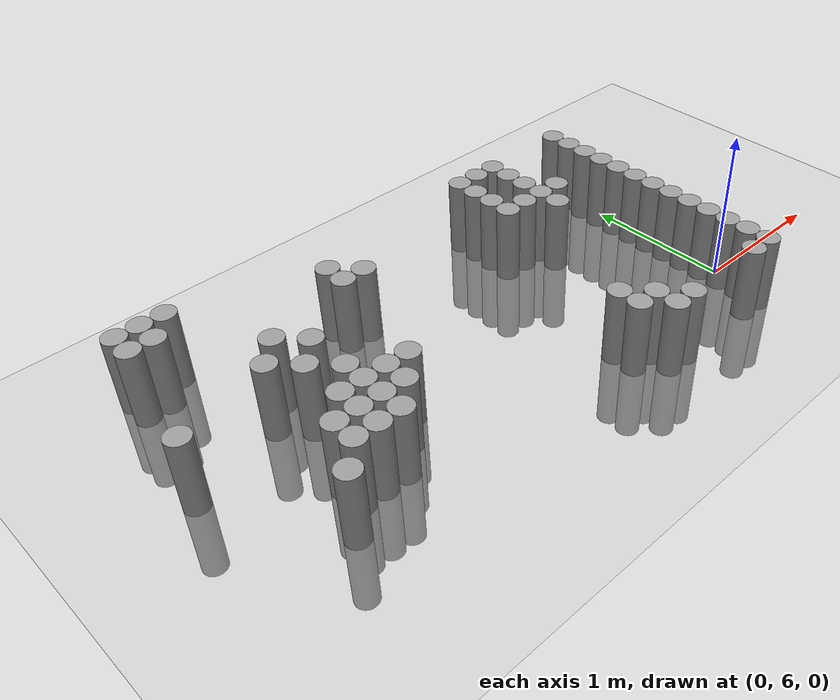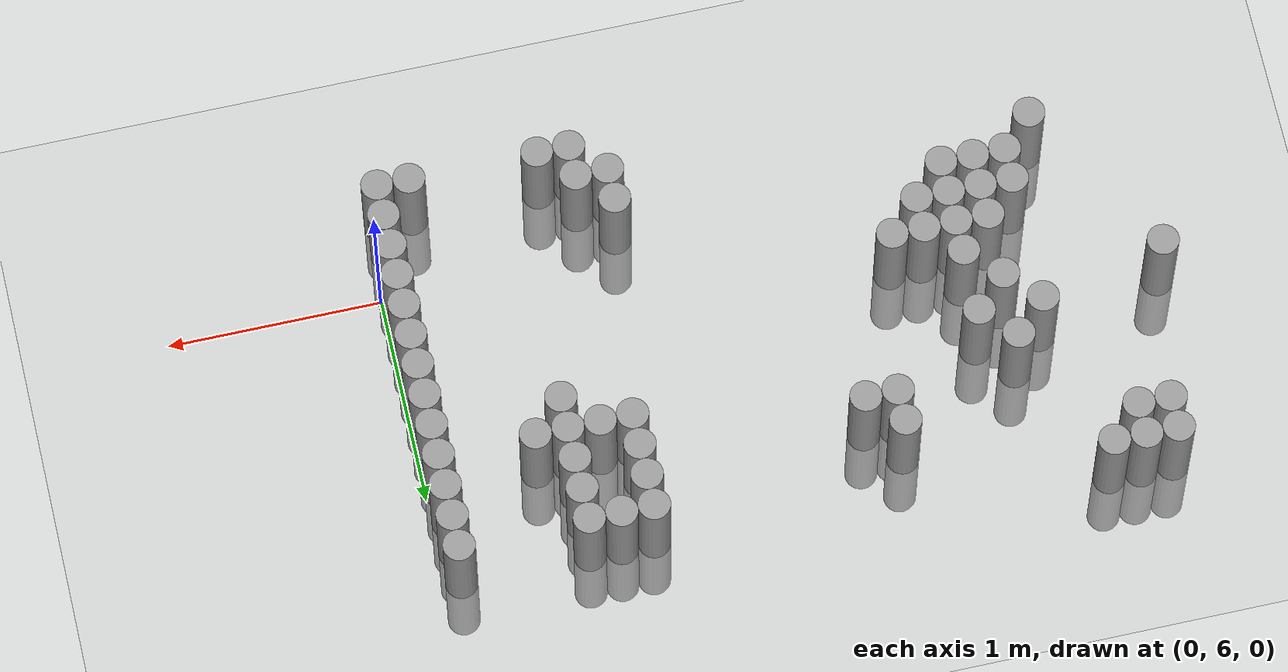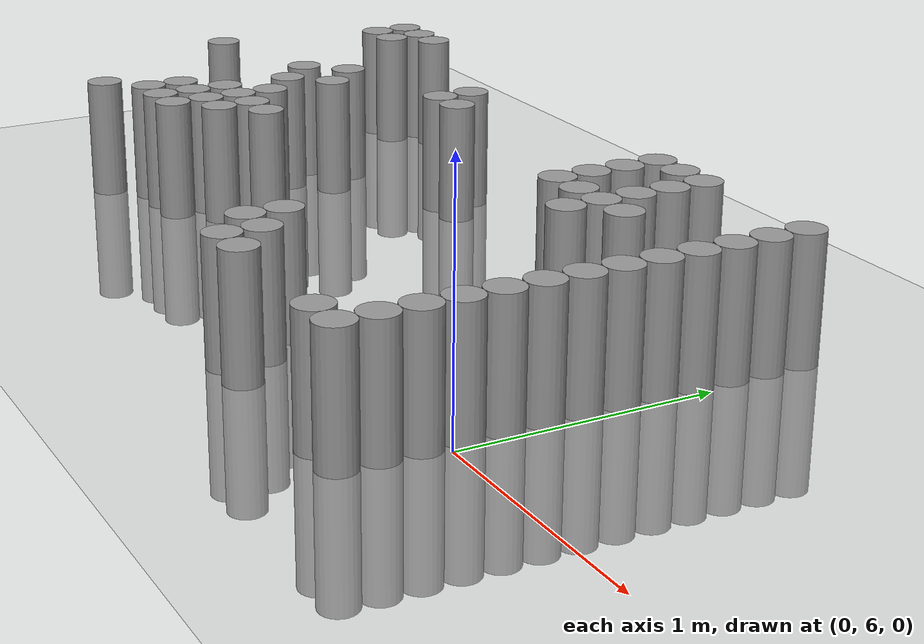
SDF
<sdf version="1.6">
 <world name="default">
  <model name="ground_plane">
   <static>1</static>
   <static>1</static>
   <link name="link">
    <collision name="collision">
     <geometry><plane><normal>0 0 1</normal><size>100 100</size></plane></geometry>
     <surface><friction><ode><mu>100</mu><mu2>50</mu2></ode></friction></surface>
    </collision>
    <visual name="visual">
     <cast_shadows>0</cast_shadows>
     <geometry><plane><normal>0 0 1</normal><size>100 100</size></plane></geometry>
     <material>
      <script><uri>file://media/materials/scripts/gazebo.material</uri><name>Gazebo/Grey</name></script>
     </material>
    </visual>
   </link>
  </model>
  <model name="unit_cylinder_160">
   <static>1</static>
   <pose>-3.525000 6.675000 0.000000 0.000000 0.000000 0.000000</pose>
   <link name="link">
    <inertial>
     <mass>1</mass>
     <inertia><ixx>0.145833</ixx><ixy>0</ixy><ixz>0</ixz><iyy>0.145833</iyy><iyz>0</iyz><izz>0.125</izz></inertia>
    </inertial>
    <collision name="collision">
     <geometry><cylinder><radius>0.075000</radius><length>1</length></cylinder></geometry>
    </collision>
    <visual name="visual">
     <geometry><cylinder><radius>0.075000</radius><length>1</length></cylinder></geometry>
     <material>
      <script><name>Gazebo/Grey</name><uri>file://media/materials/scripts/gazebo.material</uri></script>
     </material>
    </visual>
   </link>
  </model>
  <model name="unit_cylinder_161">
   <static>1</static>
   <pose>-3.375000 7.425000 0.000000 0.000000 0.000000 0.000000</pose>
   <link name="link">
    <inertial>
     <mass>1</mass>
     <inertia><ixx>0.145833</ixx><ixy>0</ixy><ixz>0</ixz><iyy>0.145833</iyy><iyz>0</iyz><izz>0.125</izz></inertia>
    </inertial>
    <collision name="collision">
     <geometry><cylinder><radius>0.075000</radius><length>1</length></cylinder></geometry>
    </collision>
    <visual name="visual">
     <geometry><cylinder><radius>0.075000</radius><length>1</length></cylinder></geometry>
     <material>
      <script><name>Gazebo/Grey</name><uri>file://media/materials/scripts/gazebo.material</uri></script>
     </material>
    </visual>
   </link>
  </model>
  <model name="unit_cylinder_162">
   <static>1</static>
   <pose>-3.375000 7.575000 0.000000 0.000000 0.000000 0.000000</pose>
   <link name="link">
    <inertial>
     <mass>1</mass>
     <inertia><ixx>0.145833</ixx><ixy>0</ixy><ixz>0</ixz><iyy>0.145833</iyy><iyz>0</iyz><izz>0.125</izz></inertia>
    </inertial>
    <collision name="collision">
     <geometry><cylinder><radius>0.075000</radius><length>1</length></cylinder></geometry>
    </collision>
    <visual name="visual">
     <geometry><cylinder><radius>0.075000</radius><length>1</length></cylinder></geometry>
     <material>
      <script><name>Gazebo/Grey</name><uri>file://media/materials/scripts/gazebo.material</uri></script>
     </material>
    </visual>
   </link>
  </model>
  <model name="unit_cylinder_163">
   <static>1</static>
   <pose>-3.225000 7.425000 0.000000 0.000000 0.000000 0.000000</pose>
   <link name="link">
    <inertial>
     <mass>1</mass>
     <inertia><ixx>0.145833</ixx><ixy>0</ixy><ixz>0</ixz><iyy>0.145833</iyy><iyz>0</iyz><izz>0.125</izz></inertia>
    </inertial>
    <collision name="collision">
     <geometry><cylinder><radius>0.075000</radius><length>1</length></cylinder></geometry>
    </collision>
    <visual name="visual">
     <geometry><cylinder><radius>0.075000</radius><length>1</length></cylinder></geometry>
     <material>
      <script><name>Gazebo/Grey</name><uri>file://media/materials/scripts/gazebo.material</uri></script>
     </material>
    </visual>
   </link>
  </model>
  <model name="unit_cylinder_164">
   <static>1</static>
   <pose>-3.225000 7.575000 0.000000 0.000000 0.000000 0.000000</pose>
   <link name="link">
    <inertial>
     <mass>1</mass>
     <inertia><ixx>0.145833</ixx><ixy>0</ixy><ixz>0</ixz><iyy>0.145833</iyy><iyz>0</iyz><izz>0.125</izz></inertia>
    </inertial>
    <collision name="collision">
     <geometry><cylinder><radius>0.075000</radius><length>1</length></cylinder></geometry>
    </collision>
    <visual name="visual">
     <geometry><cylinder><radius>0.075000</radius><length>1</length></cylinder></geometry>
     <material>
      <script><name>Gazebo/Grey</name><uri>file://media/materials/scripts/gazebo.material</uri></script>
     </material>
    </visual>
   </link>
  </model>
  <model name="unit_cylinder_168">
   <static>1</static>
   <pose>-3.075000 5.925000 0.000000 0.000000 0.000000 0.000000</pose>
   <link name="link">
    <inertial>
     <mass>1</mass>
     <inertia><ixx>0.145833</ixx><ixy>0</ixy><ixz>0</ixz><iyy>0.145833</iyy><iyz>0</iyz><izz>0.125</izz></inertia>
    </inertial>
    <collision name="collision">
     <geometry><cylinder><radius>0.075000</radius><length>1</length></cylinder></geometry>
    </collision>
    <visual name="visual">
     <geometry><cylinder><radius>0.075000</radius><length>1</length></cylinder></geometry>
     <material>
      <script><name>Gazebo/Grey</name><uri>file://media/materials/scripts/gazebo.material</uri></script>
     </material>
    </visual>
   </link>
  </model>
  <model name="unit_cylinder_169">
   <static>1</static>
   <pose>-3.075000 7.575000 0.000000 0.000000 0.000000 0.000000</pose>
   <link name="link">
    <inertial>
     <mass>1</mass>
     <inertia><ixx>0.145833</ixx><ixy>0</ixy><ixz>0</ixz><iyy>0.145833</iyy><iyz>0</iyz><izz>0.125</izz></inertia>
    </inertial>
    <collision name="collision">
     <geometry><cylinder><radius>0.075000</radius><length>1</length></cylinder></geometry>
    </collision>
    <visual name="visual">
     <geometry><cylinder><radius>0.075000</radius><length>1</length></cylinder></geometry>
     <material>
      <script><name>Gazebo/Grey</name><uri>file://media/materials/scripts/gazebo.material</uri></script>
     </material>
    </visual>
   </link>
  </model>
  <model name="unit_cylinder_173">
   <static>1</static>
   <pose>-2.925000 6.075000 0.000000 0.000000 0.000000 0.000000</pose>
   <link name="link">
    <inertial>
     <mass>1</mass>
     <inertia><ixx>0.145833</ixx><ixy>0</ixy><ixz>0</ixz><iyy>0.145833</iyy><iyz>0</iyz><izz>0.125</izz></inertia>
    </inertial>
    <collision name="collision">
     <geometry><cylinder><radius>0.075000</radius><length>1</length></cylinder></geometry>
    </collision>
    <visual name="visual">
     <geometry><cylinder><radius>0.075000</radius><length>1</length></cylinder></geometry>
     <material>
      <script><name>Gazebo/Grey</name><uri>file://media/materials/scripts/gazebo.material</uri></script>
     </material>
    </visual>
   </link>
  </model>
  <model name="unit_cylinder_174">
   <static>1</static>
   <pose>-2.925000 6.225000 0.000000 0.000000 0.000000 0.000000</pose>
   <link name="link">
    <inertial>
     <mass>1</mass>
     <inertia><ixx>0.145833</ixx><ixy>0</ixy><ixz>0</ixz><iyy>0.145833</iyy><iyz>0</iyz><izz>0.125</izz></inertia>
    </inertial>
    <collision name="collision">
     <geometry><cylinder><radius>0.075000</radius><length>1</length></cylinder></geometry>
    </collision>
    <visual name="visual">
     <geometry><cylinder><radius>0.075000</radius><length>1</length></cylinder></geometry>
     <material>
      <script><name>Gazebo/Grey</name><uri>file://media/materials/scripts/gazebo.material</uri></script>
     </material>
    </visual>
   </link>
  </model>
  <model name="unit_cylinder_175">
   <static>1</static>
   <pose>-2.925000 6.825000 0.000000 0.000000 0.000000 0.000000</pose>
   <link name="link">
    <inertial>
     <mass>1</mass>
     <inertia><ixx>0.145833</ixx><ixy>0</ixy><ixz>0</ixz><iyy>0.145833</iyy><iyz>0</iyz><izz>0.125</izz></inertia>
    </inertial>
    <collision name="collision">
     <geometry><cylinder><radius>0.075000</radius><length>1</length></cylinder></geometry>
    </collision>
    <visual name="visual">
     <geometry><cylinder><radius>0.075000</radius><length>1</length></cylinder></geometry>
     <material>
      <script><name>Gazebo/Grey</name><uri>file://media/materials/scripts/gazebo.material</uri></script>
     </material>
    </visual>
   </link>
  </model>
  <model name="unit_cylinder_178">
   <static>1</static>
   <pose>-2.775000 6.075000 0.000000 0.000000 0.000000 0.000000</pose>
   <link name="link">
    <inertial>
     <mass>1</mass>
     <inertia><ixx>0.145833</ixx><ixy>0</ixy><ixz>0</ixz><iyy>0.145833</iyy><iyz>0</iyz><izz>0.125</izz></inertia>
    </inertial>
    <collision name="collision">
     <geometry><cylinder><radius>0.075000</radius><length>1</length></cylinder></geometry>
    </collision>
    <visual name="visual">
     <geometry><cylinder><radius>0.075000</radius><length>1</length></cylinder></geometry>
     <material>
      <script><name>Gazebo/Grey</name><uri>file://media/materials/scripts/gazebo.material</uri></script>
     </material>
    </visual>
   </link>
  </model>
  <model name="unit_cylinder_179">
   <static>1</static>
   <pose>-2.775000 6.225000 0.000000 0.000000 0.000000 0.000000</pose>
   <link name="link">
    <inertial>
     <mass>1</mass>
     <inertia><ixx>0.145833</ixx><ixy>0</ixy><ixz>0</ixz><iyy>0.145833</iyy><iyz>0</iyz><izz>0.125</izz></inertia>
    </inertial>
    <collision name="collision">
     <geometry><cylinder><radius>0.075000</radius><length>1</length></cylinder></geometry>
    </collision>
    <visual name="visual">
     <geometry><cylinder><radius>0.075000</radius><length>1</length></cylinder></geometry>
     <material>
      <script><name>Gazebo/Grey</name><uri>file://media/materials/scripts/gazebo.material</uri></script>
     </material>
    </visual>
   </link>
  </model>
  <model name="unit_cylinder_180">
   <static>1</static>
   <pose>-2.775000 6.375000 0.000000 0.000000 0.000000 0.000000</pose>
   <link name="link">
    <inertial>
     <mass>1</mass>
     <inertia><ixx>0.145833</ixx><ixy>0</ixy><ixz>0</ixz><iyy>0.145833</iyy><iyz>0</iyz><izz>0.125</izz></inertia>
    </inertial>
    <collision name="collision">
     <geometry><cylinder><radius>0.075000</radius><length>1</length></cylinder></geometry>
    </collision>
    <visual name="visual">
     <geometry><cylinder><radius>0.075000</radius><length>1</length></cylinder></geometry>
     <material>
      <script><name>Gazebo/Grey</name><uri>file://media/materials/scripts/gazebo.material</uri></script>
     </material>
    </visual>
   </link>
  </model>
  <model name="unit_cylinder_181">
   <static>1</static>
   <pose>-2.775000 6.675000 0.000000 0.000000 0.000000 0.000000</pose>
   <link name="link">
    <inertial>
     <mass>1</mass>
     <inertia><ixx>0.145833</ixx><ixy>0</ixy><ixz>0</ixz><iyy>0.145833</iyy><iyz>0</iyz><izz>0.125</izz></inertia>
    </inertial>
    <collision name="collision">
     <geometry><cylinder><radius>0.075000</radius><length>1</length></cylinder></geometry>
    </collision>
    <visual name="visual">
     <geometry><cylinder><radius>0.075000</radius><length>1</length></cylinder></geometry>
     <material>
      <script><name>Gazebo/Grey</name><uri>file://media/materials/scripts/gazebo.material</uri></script>
     </material>
    </visual>
   </link>
  </model>
  <model name="unit_cylinder_182">
   <static>1</static>
   <pose>-2.775000 6.975000 0.000000 0.000000 0.000000 0.000000</pose>
   <link name="link">
    <inertial>
     <mass>1</mass>
     <inertia><ixx>0.145833</ixx><ixy>0</ixy><ixz>0</ixz><iyy>0.145833</iyy><iyz>0</iyz><izz>0.125</izz></inertia>
    </inertial>
    <collision name="collision">
     <geometry><cylinder><radius>0.075000</radius><length>1</length></cylinder></geometry>
    </collision>
    <visual name="visual">
     <geometry><cylinder><radius>0.075000</radius><length>1</length></cylinder></geometry>
     <material>
      <script><name>Gazebo/Grey</name><uri>file://media/materials/scripts/gazebo.material</uri></script>
     </material>
    </visual>
   </link>
  </model>
  <model name="unit_cylinder_186">
   <static>1</static>
   <pose>-2.625000 6.075000 0.000000 0.000000 0.000000 0.000000</pose>
   <link name="link">
    <inertial>
     <mass>1</mass>
     <inertia><ixx>0.145833</ixx><ixy>0</ixy><ixz>0</ixz><iyy>0.145833</iyy><iyz>0</iyz><izz>0.125</izz></inertia>
    </inertial>
    <collision name="collision">
     <geometry><cylinder><radius>0.075000</radius><length>1</length></cylinder></geometry>
    </collision>
    <visual name="visual">
     <geometry><cylinder><radius>0.075000</radius><length>1</length></cylinder></geometry>
     <material>
      <script><name>Gazebo/Grey</name><uri>file://media/materials/scripts/gazebo.material</uri></script>
     </material>
    </visual>
   </link>
  </model>
  <model name="unit_cylinder_187">
   <static>1</static>
   <pose>-2.625000 6.225000 0.000000 0.000000 0.000000 0.000000</pose>
   <link name="link">
    <inertial>
     <mass>1</mass>
     <inertia><ixx>0.145833</ixx><ixy>0</ixy><ixz>0</ixz><iyy>0.145833</iyy><iyz>0</iyz><izz>0.125</izz></inertia>
    </inertial>
    <collision name="collision">
     <geometry><cylinder><radius>0.075000</radius><length>1</length></cylinder></geometry>
    </collision>
    <visual name="visual">
     <geometry><cylinder><radius>0.075000</radius><length>1</length></cylinder></geometry>
     <material>
      <script><name>Gazebo/Grey</name><uri>file://media/materials/scripts/gazebo.material</uri></script>
     </material>
    </visual>
   </link>
  </model>
  <model name="unit_cylinder_188">
   <static>1</static>
   <pose>-2.625000 6.375000 0.000000 0.000000 0.000000 0.000000</pose>
   <link name="link">
    <inertial>
     <mass>1</mass>
     <inertia><ixx>0.145833</ixx><ixy>0</ixy><ixz>0</ixz><iyy>0.145833</iyy><iyz>0</iyz><izz>0.125</izz></inertia>
    </inertial>
    <collision name="collision">
     <geometry><cylinder><radius>0.075000</radius><length>1</length></cylinder></geometry>
    </collision>
    <visual name="visual">
     <geometry><cylinder><radius>0.075000</radius><length>1</length></cylinder></geometry>
     <material>
      <script><name>Gazebo/Grey</name><uri>file://media/materials/scripts/gazebo.material</uri></script>
     </material>
    </visual>
   </link>
  </model>
  <model name="unit_cylinder_189">
   <static>1</static>
   <pose>-2.625000 6.525000 0.000000 0.000000 0.000000 0.000000</pose>
   <link name="link">
    <inertial>
     <mass>1</mass>
     <inertia><ixx>0.145833</ixx><ixy>0</ixy><ixz>0</ixz><iyy>0.145833</iyy><iyz>0</iyz><izz>0.125</izz></inertia>
    </inertial>
    <collision name="collision">
     <geometry><cylinder><radius>0.075000</radius><length>1</length></cylinder></geometry>
    </collision>
    <visual name="visual">
     <geometry><cylinder><radius>0.075000</radius><length>1</length></cylinder></geometry>
     <material>
      <script><name>Gazebo/Grey</name><uri>file://media/materials/scripts/gazebo.material</uri></script>
     </material>
    </visual>
   </link>
  </model>
  <model name="unit_cylinder_190">
   <static>1</static>
   <pose>-2.625000 6.825000 0.000000 0.000000 0.000000 0.000000</pose>
   <link name="link">
    <inertial>
     <mass>1</mass>
     <inertia><ixx>0.145833</ixx><ixy>0</ixy><ixz>0</ixz><iyy>0.145833</iyy><iyz>0</iyz><izz>0.125</izz></inertia>
    </inertial>
    <collision name="collision">
     <geometry><cylinder><radius>0.075000</radius><length>1</length></cylinder></geometry>
    </collision>
    <visual name="visual">
     <geometry><cylinder><radius>0.075000</radius><length>1</length></cylinder></geometry>
     <material>
      <script><name>Gazebo/Grey</name><uri>file://media/materials/scripts/gazebo.material</uri></script>
     </material>
    </visual>
   </link>
  </model>
  <model name="unit_cylinder_194">
   <static>1</static>
   <pose>-2.475000 6.225000 0.000000 0.000000 0.000000 0.000000</pose>
   <link name="link">
    <inertial>
     <mass>1</mass>
     <inertia><ixx>0.145833</ixx><ixy>0</ixy><ixz>0</ixz><iyy>0.145833</iyy><iyz>0</iyz><izz>0.125</izz></inertia>
    </inertial>
    <collision name="collision">
     <geometry><cylinder><radius>0.075000</radius><length>1</length></cylinder></geometry>
    </collision>
    <visual name="visual">
     <geometry><cylinder><radius>0.075000</radius><length>1</length></cylinder></geometry>
     <material>
      <script><name>Gazebo/Grey</name><uri>file://media/materials/scripts/gazebo.material</uri></script>
     </material>
    </visual>
   </link>
  </model>
  <model name="unit_cylinder_195">
   <static>1</static>
   <pose>-2.475000 6.375000 0.000000 0.000000 0.000000 0.000000</pose>
   <link name="link">
    <inertial>
     <mass>1</mass>
     <inertia><ixx>0.145833</ixx><ixy>0</ixy><ixz>0</ixz><iyy>0.145833</iyy><iyz>0</iyz><izz>0.125</izz></inertia>
    </inertial>
    <collision name="collision">
     <geometry><cylinder><radius>0.075000</radius><length>1</length></cylinder></geometry>
    </collision>
    <visual name="visual">
     <geometry><cylinder><radius>0.075000</radius><length>1</length></cylinder></geometry>
     <material>
      <script><name>Gazebo/Grey</name><uri>file://media/materials/scripts/gazebo.material</uri></script>
     </material>
    </visual>
   </link>
  </model>
  <model name="unit_cylinder_196">
   <static>1</static>
   <pose>-2.325000 6.375000 0.000000 0.000000 0.000000 0.000000</pose>
   <link name="link">
    <inertial>
     <mass>1</mass>
     <inertia><ixx>0.145833</ixx><ixy>0</ixy><ixz>0</ixz><iyy>0.145833</iyy><iyz>0</iyz><izz>0.125</izz></inertia>
    </inertial>
    <collision name="collision">
     <geometry><cylinder><radius>0.075000</radius><length>1</length></cylinder></geometry>
    </collision>
    <visual name="visual">
     <geometry><cylinder><radius>0.075000</radius><length>1</length></cylinder></geometry>
     <material>
      <script><name>Gazebo/Grey</name><uri>file://media/materials/scripts/gazebo.material</uri></script>
     </material>
    </visual>
   </link>
  </model>
  <model name="unit_cylinder_198">
   <static>1</static>
   <pose>-2.175000 7.125000 0.000000 0.000000 0.000000 0.000000</pose>
   <link name="link">
    <inertial>
     <mass>1</mass>
     <inertia><ixx>0.145833</ixx><ixy>0</ixy><ixz>0</ixz><iyy>0.145833</iyy><iyz>0</iyz><izz>0.125</izz></inertia>
    </inertial>
    <collision name="collision">
     <geometry><cylinder><radius>0.075000</radius><length>1</length></cylinder></geometry>
    </collision>
    <visual name="visual">
     <geometry><cylinder><radius>0.075000</radius><length>1</length></cylinder></geometry>
     <material>
      <script><name>Gazebo/Grey</name><uri>file://media/materials/scripts/gazebo.material</uri></script>
     </material>
    </visual>
   </link>
  </model>
  <model name="unit_cylinder_199">
   <static>1</static>
   <pose>-2.175000 7.275000 0.000000 0.000000 0.000000 0.000000</pose>
   <link name="link">
    <inertial>
     <mass>1</mass>
     <inertia><ixx>0.145833</ixx><ixy>0</ixy><ixz>0</ixz><iyy>0.145833</iyy><iyz>0</iyz><izz>0.125</izz></inertia>
    </inertial>
    <collision name="collision">
     <geometry><cylinder><radius>0.075000</radius><length>1</length></cylinder></geometry>
    </collision>
    <visual name="visual">
     <geometry><cylinder><radius>0.075000</radius><length>1</length></cylinder></geometry>
     <material>
      <script><name>Gazebo/Grey</name><uri>file://media/materials/scripts/gazebo.material</uri></script>
     </material>
    </visual>
   </link>
  </model>
  <model name="unit_cylinder_204">
   <static>1</static>
   <pose>-2.025000 7.125000 0.000000 0.000000 0.000000 0.000000</pose>
   <link name="link">
    <inertial>
     <mass>1</mass>
     <inertia><ixx>0.145833</ixx><ixy>0</ixy><ixz>0</ixz><iyy>0.145833</iyy><iyz>0</iyz><izz>0.125</izz></inertia>
    </inertial>
    <collision name="collision">
     <geometry><cylinder><radius>0.075000</radius><length>1</length></cylinder></geometry>
    </collision>
    <visual name="visual">
     <geometry><cylinder><radius>0.075000</radius><length>1</length></cylinder></geometry>
     <material>
      <script><name>Gazebo/Grey</name><uri>file://media/materials/scripts/gazebo.material</uri></script>
     </material>
    </visual>
   </link>
  </model>
  <model name="unit_cylinder_214">
   <static>1</static>
   <pose>-1.125000 5.775000 0.000000 0.000000 0.000000 0.000000</pose>
   <link name="link">
    <inertial>
     <mass>1</mass>
     <inertia><ixx>0.145833</ixx><ixy>0</ixy><ixz>0</ixz><iyy>0.145833</iyy><iyz>0</iyz><izz>0.125</izz></inertia>
    </inertial>
    <collision name="collision">
     <geometry><cylinder><radius>0.075000</radius><length>1</length></cylinder></geometry>
    </collision>
    <visual name="visual">
     <geometry><cylinder><radius>0.075000</radius><length>1</length></cylinder></geometry>
     <material>
      <script><name>Gazebo/Grey</name><uri>file://media/materials/scripts/gazebo.material</uri></script>
     </material>
    </visual>
   </link>
  </model>
  <model name="unit_cylinder_215">
   <static>1</static>
   <pose>-1.125000 5.925000 0.000000 0.000000 0.000000 0.000000</pose>
   <link name="link">
    <inertial>
     <mass>1</mass>
     <inertia><ixx>0.145833</ixx><ixy>0</ixy><ixz>0</ixz><iyy>0.145833</iyy><iyz>0</iyz><izz>0.125</izz></inertia>
    </inertial>
    <collision name="collision">
     <geometry><cylinder><radius>0.075000</radius><length>1</length></cylinder></geometry>
    </collision>
    <visual name="visual">
     <geometry><cylinder><radius>0.075000</radius><length>1</length></cylinder></geometry>
     <material>
      <script><name>Gazebo/Grey</name><uri>file://media/materials/scripts/gazebo.material</uri></script>
     </material>
    </visual>
   </link>
  </model>
  <model name="unit_cylinder_217">
   <static>1</static>
   <pose>-0.975000 5.625000 0.000000 0.000000 0.000000 0.000000</pose>
   <link name="link">
    <inertial>
     <mass>1</mass>
     <inertia><ixx>0.145833</ixx><ixy>0</ixy><ixz>0</ixz><iyy>0.145833</iyy><iyz>0</iyz><izz>0.125</izz></inertia>
    </inertial>
    <collision name="collision">
     <geometry><cylinder><radius>0.075000</radius><length>1</length></cylinder></geometry>
    </collision>
    <visual name="visual">
     <geometry><cylinder><radius>0.075000</radius><length>1</length></cylinder></geometry>
     <material>
      <script><name>Gazebo/Grey</name><uri>file://media/materials/scripts/gazebo.material</uri></script>
     </material>
    </visual>
   </link>
  </model>
  <model name="unit_cylinder_218">
   <static>1</static>
   <pose>-0.975000 5.775000 0.000000 0.000000 0.000000 0.000000</pose>
   <link name="link">
    <inertial>
     <mass>1</mass>
     <inertia><ixx>0.145833</ixx><ixy>0</ixy><ixz>0</ixz><iyy>0.145833</iyy><iyz>0</iyz><izz>0.125</izz></inertia>
    </inertial>
    <collision name="collision">
     <geometry><cylinder><radius>0.075000</radius><length>1</length></cylinder></geometry>
    </collision>
    <visual name="visual">
     <geometry><cylinder><radius>0.075000</radius><length>1</length></cylinder></geometry>
     <material>
      <script><name>Gazebo/Grey</name><uri>file://media/materials/scripts/gazebo.material</uri></script>
     </material>
    </visual>
   </link>
  </model>
  <model name="unit_cylinder_219">
   <static>1</static>
   <pose>-0.975000 6.975000 0.000000 0.000000 0.000000 0.000000</pose>
   <link name="link">
    <inertial>
     <mass>1</mass>
     <inertia><ixx>0.145833</ixx><ixy>0</ixy><ixz>0</ixz><iyy>0.145833</iyy><iyz>0</iyz><izz>0.125</izz></inertia>
    </inertial>
    <collision name="collision">
     <geometry><cylinder><radius>0.075000</radius><length>1</length></cylinder></geometry>
    </collision>
    <visual name="visual">
     <geometry><cylinder><radius>0.075000</radius><length>1</length></cylinder></geometry>
     <material>
      <script><name>Gazebo/Grey</name><uri>file://media/materials/scripts/gazebo.material</uri></script>
     </material>
    </visual>
   </link>
  </model>
  <model name="unit_cylinder_220">
   <static>1</static>
   <pose>-0.975000 7.125000 0.000000 0.000000 0.000000 0.000000</pose>
   <link name="link">
    <inertial>
     <mass>1</mass>
     <inertia><ixx>0.145833</ixx><ixy>0</ixy><ixz>0</ixz><iyy>0.145833</iyy><iyz>0</iyz><izz>0.125</izz></inertia>
    </inertial>
    <collision name="collision">
     <geometry><cylinder><radius>0.075000</radius><length>1</length></cylinder></geometry>
    </collision>
    <visual name="visual">
     <geometry><cylinder><radius>0.075000</radius><length>1</length></cylinder></geometry>
     <material>
      <script><name>Gazebo/Grey</name><uri>file://media/materials/scripts/gazebo.material</uri></script>
     </material>
    </visual>
   </link>
  </model>
  <model name="unit_cylinder_221">
   <static>1</static>
   <pose>-0.975000 7.275000 0.000000 0.000000 0.000000 0.000000</pose>
   <link name="link">
    <inertial>
     <mass>1</mass>
     <inertia><ixx>0.145833</ixx><ixy>0</ixy><ixz>0</ixz><iyy>0.145833</iyy><iyz>0</iyz><izz>0.125</izz></inertia>
    </inertial>
    <collision name="collision">
     <geometry><cylinder><radius>0.075000</radius><length>1</length></cylinder></geometry>
    </collision>
    <visual name="visual">
     <geometry><cylinder><radius>0.075000</radius><length>1</length></cylinder></geometry>
     <material>
      <script><name>Gazebo/Grey</name><uri>file://media/materials/scripts/gazebo.material</uri></script>
     </material>
    </visual>
   </link>
  </model>
  <model name="unit_cylinder_222">
   <static>1</static>
   <pose>-0.975000 7.425000 0.000000 0.000000 0.000000 0.000000</pose>
   <link name="link">
    <inertial>
     <mass>1</mass>
     <inertia><ixx>0.145833</ixx><ixy>0</ixy><ixz>0</ixz><iyy>0.145833</iyy><iyz>0</iyz><izz>0.125</izz></inertia>
    </inertial>
    <collision name="collision">
     <geometry><cylinder><radius>0.075000</radius><length>1</length></cylinder></geometry>
    </collision>
    <visual name="visual">
     <geometry><cylinder><radius>0.075000</radius><length>1</length></cylinder></geometry>
     <material>
      <script><name>Gazebo/Grey</name><uri>file://media/materials/scripts/gazebo.material</uri></script>
     </material>
    </visual>
   </link>
  </model>
  <model name="unit_cylinder_225">
   <static>1</static>
   <pose>-0.825000 5.625000 0.000000 0.000000 0.000000 0.000000</pose>
   <link name="link">
    <inertial>
     <mass>1</mass>
     <inertia><ixx>0.145833</ixx><ixy>0</ixy><ixz>0</ixz><iyy>0.145833</iyy><iyz>0</iyz><izz>0.125</izz></inertia>
    </inertial>
    <collision name="collision">
     <geometry><cylinder><radius>0.075000</radius><length>1</length></cylinder></geometry>
    </collision>
    <visual name="visual">
     <geometry><cylinder><radius>0.075000</radius><length>1</length></cylinder></geometry>
     <material>
      <script><name>Gazebo/Grey</name><uri>file://media/materials/scripts/gazebo.material</uri></script>
     </material>
    </visual>
   </link>
  </model>
  <model name="unit_cylinder_226">
   <static>1</static>
   <pose>-0.825000 6.975000 0.000000 0.000000 0.000000 0.000000</pose>
   <link name="link">
    <inertial>
     <mass>1</mass>
     <inertia><ixx>0.145833</ixx><ixy>0</ixy><ixz>0</ixz><iyy>0.145833</iyy><iyz>0</iyz><izz>0.125</izz></inertia>
    </inertial>
    <collision name="collision">
     <geometry><cylinder><radius>0.075000</radius><length>1</length></cylinder></geometry>
    </collision>
    <visual name="visual">
     <geometry><cylinder><radius>0.075000</radius><length>1</length></cylinder></geometry>
     <material>
      <script><name>Gazebo/Grey</name><uri>file://media/materials/scripts/gazebo.material</uri></script>
     </material>
    </visual>
   </link>
  </model>
  <model name="unit_cylinder_227">
   <static>1</static>
   <pose>-0.825000 7.425000 0.000000 0.000000 0.000000 0.000000</pose>
   <link name="link">
    <inertial>
     <mass>1</mass>
     <inertia><ixx>0.145833</ixx><ixy>0</ixy><ixz>0</ixz><iyy>0.145833</iyy><iyz>0</iyz><izz>0.125</izz></inertia>
    </inertial>
    <collision name="collision">
     <geometry><cylinder><radius>0.075000</radius><length>1</length></cylinder></geometry>
    </collision>
    <visual name="visual">
     <geometry><cylinder><radius>0.075000</radius><length>1</length></cylinder></geometry>
     <material>
      <script><name>Gazebo/Grey</name><uri>file://media/materials/scripts/gazebo.material</uri></script>
     </material>
    </visual>
   </link>
  </model>
  <model name="unit_cylinder_233">
   <static>1</static>
   <pose>-0.675000 6.825000 0.000000 0.000000 0.000000 0.000000</pose>
   <link name="link">
    <inertial>
     <mass>1</mass>
     <inertia><ixx>0.145833</ixx><ixy>0</ixy><ixz>0</ixz><iyy>0.145833</iyy><iyz>0</iyz><izz>0.125</izz></inertia>
    </inertial>
    <collision name="collision">
     <geometry><cylinder><radius>0.075000</radius><length>1</length></cylinder></geometry>
    </collision>
    <visual name="visual">
     <geometry><cylinder><radius>0.075000</radius><length>1</length></cylinder></geometry>
     <material>
      <script><name>Gazebo/Grey</name><uri>file://media/materials/scripts/gazebo.material</uri></script>
     </material>
    </visual>
   </link>
  </model>
  <model name="unit_cylinder_234">
   <static>1</static>
   <pose>-0.675000 6.975000 0.000000 0.000000 0.000000 0.000000</pose>
   <link name="link">
    <inertial>
     <mass>1</mass>
     <inertia><ixx>0.145833</ixx><ixy>0</ixy><ixz>0</ixz><iyy>0.145833</iyy><iyz>0</iyz><izz>0.125</izz></inertia>
    </inertial>
    <collision name="collision">
     <geometry><cylinder><radius>0.075000</radius><length>1</length></cylinder></geometry>
    </collision>
    <visual name="visual">
     <geometry><cylinder><radius>0.075000</radius><length>1</length></cylinder></geometry>
     <material>
      <script><name>Gazebo/Grey</name><uri>file://media/materials/scripts/gazebo.material</uri></script>
     </material>
    </visual>
   </link>
  </model>
  <model name="unit_cylinder_235">
   <static>1</static>
   <pose>-0.675000 7.125000 0.000000 0.000000 0.000000 0.000000</pose>
   <link name="link">
    <inertial>
     <mass>1</mass>
     <inertia><ixx>0.145833</ixx><ixy>0</ixy><ixz>0</ixz><iyy>0.145833</iyy><iyz>0</iyz><izz>0.125</izz></inertia>
    </inertial>
    <collision name="collision">
     <geometry><cylinder><radius>0.075000</radius><length>1</length></cylinder></geometry>
    </collision>
    <visual name="visual">
     <geometry><cylinder><radius>0.075000</radius><length>1</length></cylinder></geometry>
     <material>
      <script><name>Gazebo/Grey</name><uri>file://media/materials/scripts/gazebo.material</uri></script>
     </material>
    </visual>
   </link>
  </model>
  <model name="unit_cylinder_236">
   <static>1</static>
   <pose>-0.675000 7.275000 0.000000 0.000000 0.000000 0.000000</pose>
   <link name="link">
    <inertial>
     <mass>1</mass>
     <inertia><ixx>0.145833</ixx><ixy>0</ixy><ixz>0</ixz><iyy>0.145833</iyy><iyz>0</iyz><izz>0.125</izz></inertia>
    </inertial>
    <collision name="collision">
     <geometry><cylinder><radius>0.075000</radius><length>1</length></cylinder></geometry>
    </collision>
    <visual name="visual">
     <geometry><cylinder><radius>0.075000</radius><length>1</length></cylinder></geometry>
     <material>
      <script><name>Gazebo/Grey</name><uri>file://media/materials/scripts/gazebo.material</uri></script>
     </material>
    </visual>
   </link>
  </model>
  <model name="unit_cylinder_237">
   <static>1</static>
   <pose>-0.675000 7.425000 0.000000 0.000000 0.000000 0.000000</pose>
   <link name="link">
    <inertial>
     <mass>1</mass>
     <inertia><ixx>0.145833</ixx><ixy>0</ixy><ixz>0</ixz><iyy>0.145833</iyy><iyz>0</iyz><izz>0.125</izz></inertia>
    </inertial>
    <collision name="collision">
     <geometry><cylinder><radius>0.075000</radius><length>1</length></cylinder></geometry>
    </collision>
    <visual name="visual">
     <geometry><cylinder><radius>0.075000</radius><length>1</length></cylinder></geometry>
     <material>
      <script><name>Gazebo/Grey</name><uri>file://media/materials/scripts/gazebo.material</uri></script>
     </material>
    </visual>
   </link>
  </model>
  <model name="unit_cylinder_240">
   <static>1</static>
   <pose>-0.525000 6.975000 0.000000 0.000000 0.000000 0.000000</pose>
   <link name="link">
    <inertial>
     <mass>1</mass>
     <inertia><ixx>0.145833</ixx><ixy>0</ixy><ixz>0</ixz><iyy>0.145833</iyy><iyz>0</iyz><izz>0.125</izz></inertia>
    </inertial>
    <collision name="collision">
     <geometry><cylinder><radius>0.075000</radius><length>1</length></cylinder></geometry>
    </collision>
    <visual name="visual">
     <geometry><cylinder><radius>0.075000</radius><length>1</length></cylinder></geometry>
     <material>
      <script><name>Gazebo/Grey</name><uri>file://media/materials/scripts/gazebo.material</uri></script>
     </material>
    </visual>
   </link>
  </model>
  <model name="unit_cylinder_250">
   <static>1</static>
   <pose>-0.225000 5.625000 0.000000 0.000000 0.000000 0.000000</pose>
   <link name="link">
    <inertial>
     <mass>1</mass>
     <inertia><ixx>0.145833</ixx><ixy>0</ixy><ixz>0</ixz><iyy>0.145833</iyy><iyz>0</iyz><izz>0.125</izz></inertia>
    </inertial>
    <collision name="collision">
     <geometry><cylinder><radius>0.075000</radius><length>1</length></cylinder></geometry>
    </collision>
    <visual name="visual">
     <geometry><cylinder><radius>0.075000</radius><length>1</length></cylinder></geometry>
     <material>
      <script><name>Gazebo/Grey</name><uri>file://media/materials/scripts/gazebo.material</uri></script>
     </material>
    </visual>
   </link>
  </model>
  <model name="unit_cylinder_258">
   <static>1</static>
   <pose>-0.075000 5.625000 0.000000 0.000000 0.000000 0.000000</pose>
   <link name="link">
    <inertial>
     <mass>1</mass>
     <inertia><ixx>0.145833</ixx><ixy>0</ixy><ixz>0</ixz><iyy>0.145833</iyy><iyz>0</iyz><izz>0.125</izz></inertia>
    </inertial>
    <collision name="collision">
     <geometry><cylinder><radius>0.075000</radius><length>1</length></cylinder></geometry>
    </collision>
    <visual name="visual">
     <geometry><cylinder><radius>0.075000</radius><length>1</length></cylinder></geometry>
     <material>
      <script><name>Gazebo/Grey</name><uri>file://media/materials/scripts/gazebo.material</uri></script>
     </material>
    </visual>
   </link>
  </model>
  <model name="unit_cylinder_259">
   <static>1</static>
   <pose>-0.075000 5.775000 0.000000 0.000000 0.000000 0.000000</pose>
   <link name="link">
    <inertial>
     <mass>1</mass>
     <inertia><ixx>0.145833</ixx><ixy>0</ixy><ixz>0</ixz><iyy>0.145833</iyy><iyz>0</iyz><izz>0.125</izz></inertia>
    </inertial>
    <collision name="collision">
     <geometry><cylinder><radius>0.075000</radius><length>1</length></cylinder></geometry>
    </collision>
    <visual name="visual">
     <geometry><cylinder><radius>0.075000</radius><length>1</length></cylinder></geometry>
     <material>
      <script><name>Gazebo/Grey</name><uri>file://media/materials/scripts/gazebo.material</uri></script>
     </material>
    </visual>
   </link>
  </model>
  <model name="unit_cylinder_260">
   <static>1</static>
   <pose>-0.075000 5.925000 0.000000 0.000000 0.000000 0.000000</pose>
   <link name="link">
    <inertial>
     <mass>1</mass>
     <inertia><ixx>0.145833</ixx><ixy>0</ixy><ixz>0</ixz><iyy>0.145833</iyy><iyz>0</iyz><izz>0.125</izz></inertia>
    </inertial>
    <collision name="collision">
     <geometry><cylinder><radius>0.075000</radius><length>1</length></cylinder></geometry>
    </collision>
    <visual name="visual">
     <geometry><cylinder><radius>0.075000</radius><length>1</length></cylinder></geometry>
     <material>
      <script><name>Gazebo/Grey</name><uri>file://media/materials/scripts/gazebo.material</uri></script>
     </material>
    </visual>
   </link>
  </model>
  <model name="unit_cylinder_261">
   <static>1</static>
   <pose>-0.075000 6.075000 0.000000 0.000000 0.000000 0.000000</pose>
   <link name="link">
    <inertial>
     <mass>1</mass>
     <inertia><ixx>0.145833</ixx><ixy>0</ixy><ixz>0</ixz><iyy>0.145833</iyy><iyz>0</iyz><izz>0.125</izz></inertia>
    </inertial>
    <collision name="collision">
     <geometry><cylinder><radius>0.075000</radius><length>1</length></cylinder></geometry>
    </collision>
    <visual name="visual">
     <geometry><cylinder><radius>0.075000</radius><length>1</length></cylinder></geometry>
     <material>
      <script><name>Gazebo/Grey</name><uri>file://media/materials/scripts/gazebo.material</uri></script>
     </material>
    </visual>
   </link>
  </model>
  <model name="unit_cylinder_262">
   <static>1</static>
   <pose>-0.075000 6.225000 0.000000 0.000000 0.000000 0.000000</pose>
   <link name="link">
    <inertial>
     <mass>1</mass>
     <inertia><ixx>0.145833</ixx><ixy>0</ixy><ixz>0</ixz><iyy>0.145833</iyy><iyz>0</iyz><izz>0.125</izz></inertia>
    </inertial>
    <collision name="collision">
     <geometry><cylinder><radius>0.075000</radius><length>1</length></cylinder></geometry>
    </collision>
    <visual name="visual">
     <geometry><cylinder><radius>0.075000</radius><length>1</length></cylinder></geometry>
     <material>
      <script><name>Gazebo/Grey</name><uri>file://media/materials/scripts/gazebo.material</uri></script>
     </material>
    </visual>
   </link>
  </model>
  <model name="unit_cylinder_263">
   <static>1</static>
   <pose>-0.075000 6.375000 0.000000 0.000000 0.000000 0.000000</pose>
   <link name="link">
    <inertial>
     <mass>1</mass>
     <inertia><ixx>0.145833</ixx><ixy>0</ixy><ixz>0</ixz><iyy>0.145833</iyy><iyz>0</iyz><izz>0.125</izz></inertia>
    </inertial>
    <collision name="collision">
     <geometry><cylinder><radius>0.075000</radius><length>1</length></cylinder></geometry>
    </collision>
    <visual name="visual">
     <geometry><cylinder><radius>0.075000</radius><length>1</length></cylinder></geometry>
     <material>
      <script><name>Gazebo/Grey</name><uri>file://media/materials/scripts/gazebo.material</uri></script>
     </material>
    </visual>
   </link>
  </model>
  <model name="unit_cylinder_264">
   <static>1</static>
   <pose>-0.075000 6.525000 0.000000 0.000000 0.000000 0.000000</pose>
   <link name="link">
    <inertial>
     <mass>1</mass>
     <inertia><ixx>0.145833</ixx><ixy>0</ixy><ixz>0</ixz><iyy>0.145833</iyy><iyz>0</iyz><izz>0.125</izz></inertia>
    </inertial>
    <collision name="collision">
     <geometry><cylinder><radius>0.075000</radius><length>1</length></cylinder></geometry>
    </collision>
    <visual name="visual">
     <geometry><cylinder><radius>0.075000</radius><length>1</length></cylinder></geometry>
     <material>
      <script><name>Gazebo/Grey</name><uri>file://media/materials/scripts/gazebo.material</uri></script>
     </material>
    </visual>
   </link>
  </model>
  <model name="unit_cylinder_265">
   <static>1</static>
   <pose>-0.075000 6.675000 0.000000 0.000000 0.000000 0.000000</pose>
   <link name="link">
    <inertial>
     <mass>1</mass>
     <inertia><ixx>0.145833</ixx><ixy>0</ixy><ixz>0</ixz><iyy>0.145833</iyy><iyz>0</iyz><izz>0.125</izz></inertia>
    </inertial>
    <collision name="collision">
     <geometry><cylinder><radius>0.075000</radius><length>1</length></cylinder></geometry>
    </collision>
    <visual name="visual">
     <geometry><cylinder><radius>0.075000</radius><length>1</length></cylinder></geometry>
     <material>
      <script><name>Gazebo/Grey</name><uri>file://media/materials/scripts/gazebo.material</uri></script>
     </material>
    </visual>
   </link>
  </model>
  <model name="unit_cylinder_266">
   <static>1</static>
   <pose>-0.075000 6.825000 0.000000 0.000000 0.000000 0.000000</pose>
   <link name="link">
    <inertial>
     <mass>1</mass>
     <inertia><ixx>0.145833</ixx><ixy>0</ixy><ixz>0</ixz><iyy>0.145833</iyy><iyz>0</iyz><izz>0.125</izz></inertia>
    </inertial>
    <collision name="collision">
     <geometry><cylinder><radius>0.075000</radius><length>1</length></cylinder></geometry>
    </collision>
    <visual name="visual">
     <geometry><cylinder><radius>0.075000</radius><length>1</length></cylinder></geometry>
     <material>
      <script><name>Gazebo/Grey</name><uri>file://media/materials/scripts/gazebo.material</uri></script>
     </material>
    </visual>
   </link>
  </model>
  <model name="unit_cylinder_267">
   <static>1</static>
   <pose>-0.075000 6.975000 0.000000 0.000000 0.000000 0.000000</pose>
   <link name="link">
    <inertial>
     <mass>1</mass>
     <inertia><ixx>0.145833</ixx><ixy>0</ixy><ixz>0</ixz><iyy>0.145833</iyy><iyz>0</iyz><izz>0.125</izz></inertia>
    </inertial>
    <collision name="collision">
     <geometry><cylinder><radius>0.075000</radius><length>1</length></cylinder></geometry>
    </collision>
    <visual name="visual">
     <geometry><cylinder><radius>0.075000</radius><length>1</length></cylinder></geometry>
     <material>
      <script><name>Gazebo/Grey</name><uri>file://media/materials/scripts/gazebo.material</uri></script>
     </material>
    </visual>
   </link>
  </model>
  <model name="unit_cylinder_268">
   <static>1</static>
   <pose>-0.075000 7.125000 0.000000 0.000000 0.000000 0.000000</pose>
   <link name="link">
    <inertial>
     <mass>1</mass>
     <inertia><ixx>0.145833</ixx><ixy>0</ixy><ixz>0</ixz><iyy>0.145833</iyy><iyz>0</iyz><izz>0.125</izz></inertia>
    </inertial>
    <collision name="collision">
     <geometry><cylinder><radius>0.075000</radius><length>1</length></cylinder></geometry>
    </collision>
    <visual name="visual">
     <geometry><cylinder><radius>0.075000</radius><length>1</length></cylinder></geometry>
     <material>
      <script><name>Gazebo/Grey</name><uri>file://media/materials/scripts/gazebo.material</uri></script>
     </material>
    </visual>
   </link>
  </model>
  <model name="unit_cylinder_269">
   <static>1</static>
   <pose>-0.075000 7.275000 0.000000 0.000000 0.000000 0.000000</pose>
   <link name="link">
    <inertial>
     <mass>1</mass>
     <inertia><ixx>0.145833</ixx><ixy>0</ixy><ixz>0</ixz><iyy>0.145833</iyy><iyz>0</iyz><izz>0.125</izz></inertia>
    </inertial>
    <collision name="collision">
     <geometry><cylinder><radius>0.075000</radius><length>1</length></cylinder></geometry>
    </collision>
    <visual name="visual">
     <geometry><cylinder><radius>0.075000</radius><length>1</length></cylinder></geometry>
     <material>
      <script><name>Gazebo/Grey</name><uri>file://media/materials/scripts/gazebo.material</uri></script>
     </material>
    </visual>
   </link>
  </model>
  <model name="unit_cylinder_270">
   <static>1</static>
   <pose>-0.075000 7.425000 0.000000 0.000000 0.000000 0.000000</pose>
   <link name="link">
    <inertial>
     <mass>1</mass>
     <inertia><ixx>0.145833</ixx><ixy>0</ixy><ixz>0</ixz><iyy>0.145833</iyy><iyz>0</iyz><izz>0.125</izz></inertia>
    </inertial>
    <collision name="collision">
     <geometry><cylinder><radius>0.075000</radius><length>1</length></cylinder></geometry>
    </collision>
    <visual name="visual">
     <geometry><cylinder><radius>0.075000</radius><length>1</length></cylinder></geometry>
     <material>
      <script><name>Gazebo/Grey</name><uri>file://media/materials/scripts/gazebo.material</uri></script>
     </material>
    </visual>
   </link>
  </model>
 </world>
</sdf>
